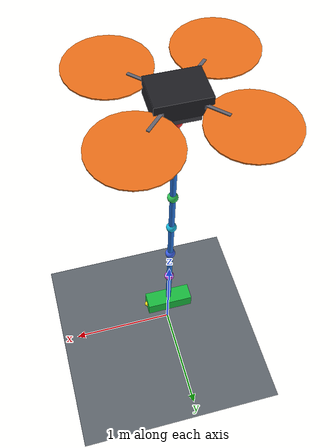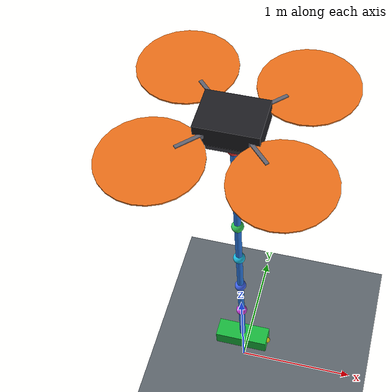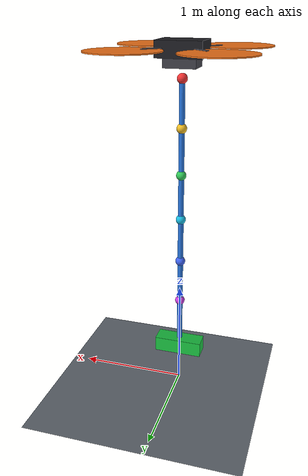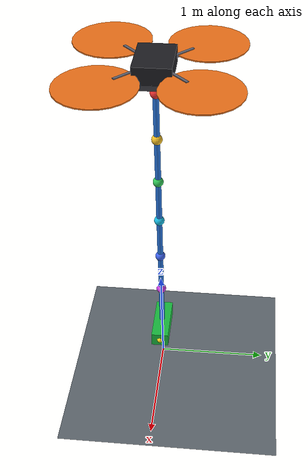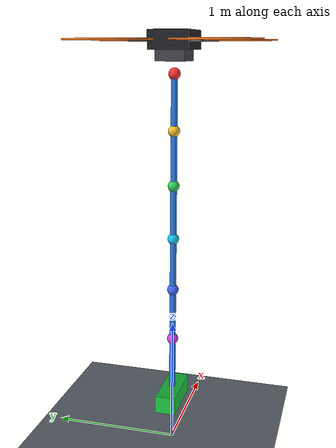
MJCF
<?xml version='1.0' encoding='utf-8'?>
<mujoco model="uav_planar_chain_6link">
  <!--Quadrotor geometry/actuator organization adapted in memory from Udaan; no upstream file is modified.-->
  <compiler angle="radian" coordinate="local" inertiafromgeom="false" />
  <option timestep="0.001" gravity="0 0 -9.81" integrator="RK4">
    <flag energy="enable" />
  </option>
  <visual>
    <global offwidth="1280" offheight="720" />
  </visual>
  <asset>
    <texture name="sky" type="skybox" builtin="gradient" rgb1="0.7 0.82 0.95" rgb2="0.35 0.45 0.55" width="512" height="512" />
    <texture name="checker" type="2d" builtin="checker" rgb1="0.42 0.45 0.48" rgb2="0.34 0.37 0.4" width="512" height="512" mark="cross" markrgb="0.65 0.65 0.65" />
    <material name="ground_mat" texture="checker" texrepeat="10 10" texuniform="true" reflectance="0.15" />
  </asset>
  <worldbody>
    <light name="key" pos="2 2 6" dir="-0.2 -0.2 -1" directional="true" diffuse="0.9 0.9 0.9" />
    <geom name="ground" type="plane" size="0 0 1" material="ground_mat" condim="1" />
    <camera name="main_camera" mode="targetbody" target="link_3" pos="4 -6 3.5" fovy="50" />
    <camera name="side_camera" mode="fixed" pos="0 -6 1.7" xyaxes="1 0 0 0 0 1" fovy="45" />
    <camera name="oblique_camera" mode="targetbody" target="link_3" pos="5 -3 4.2" fovy="50" />
    <body name="quadrotor" pos="0 0 3.2" quat="1 0 0 0">
      <joint name="quadrotor_free" type="free" />
      <inertial pos="0 0 0" mass="9.74" diaginertia="0.655826666667 0.966532666667 1.24834333333" />
      <geom name="m400_fuselage" type="box" pos="0 0 0" size="0.20 0.15 0.07" mass="0" contype="0" conaffinity="0" rgba="0.12 0.12 0.14 1" />
      <geom name="m400_lower_body" type="box" pos="0 0 -0.10" size="0.14 0.11 0.05" mass="0" contype="0" conaffinity="0" rgba="0.25 0.25 0.28 1" />
      <geom name="quadrotor_rotor_arm_geom_0" type="box" pos="0 0 0" quat="0.92388 0 0 0.382683" size="0.378302127935 0.012 0.012" mass="0" contype="0" conaffinity="0" rgba="0.4 0.4 0.45 1" />
      <geom name="quadrotor_rotor_prop_geom_0" type="cylinder" size="0.3175 0.005" pos="0.378302127935 0.378302127935 0" mass="0" contype="0" conaffinity="0" rgba="0.95 0.45 0.1 1" />
      <site name="site0" type="box" pos="0.378302127935 0.378302127935 0" size="0.01 0.01 0.01" rgba="0 0 0 0" />
      <geom name="quadrotor_rotor_arm_geom_1" type="box" pos="0 0 0" quat="0.382683 0 0 0.92388" size="0.378302127935 0.012 0.012" mass="0" contype="0" conaffinity="0" rgba="0.4 0.4 0.45 1" />
      <geom name="quadrotor_rotor_prop_geom_1" type="cylinder" size="0.3175 0.005" pos="-0.378302127935 0.378302127935 0" mass="0" contype="0" conaffinity="0" rgba="0.95 0.45 0.1 1" />
      <site name="site1" type="box" pos="-0.378302127935 0.378302127935 0" size="0.01 0.01 0.01" rgba="0 0 0 0" />
      <geom name="quadrotor_rotor_arm_geom_2" type="box" pos="0 0 0" quat="-0.382683 0 0 0.92388" size="0.378302127935 0.012 0.012" mass="0" contype="0" conaffinity="0" rgba="0.4 0.4 0.45 1" />
      <geom name="quadrotor_rotor_prop_geom_2" type="cylinder" size="0.3175 0.005" pos="-0.378302127935 -0.378302127935 0" mass="0" contype="0" conaffinity="0" rgba="0.95 0.45 0.1 1" />
      <site name="site2" type="box" pos="-0.378302127935 -0.378302127935 0" size="0.01 0.01 0.01" rgba="0 0 0 0" />
      <geom name="quadrotor_rotor_arm_geom_3" type="box" pos="0 0 0" quat="-0.92388 0 0 0.382683" size="0.378302127935 0.012 0.012" mass="0" contype="0" conaffinity="0" rgba="0.4 0.4 0.45 1" />
      <geom name="quadrotor_rotor_prop_geom_3" type="cylinder" size="0.3175 0.005" pos="0.378302127935 -0.378302127935 0" mass="0" contype="0" conaffinity="0" rgba="0.95 0.45 0.1 1" />
      <site name="site3" type="box" pos="0.378302127935 -0.378302127935 0" size="0.01 0.01 0.01" rgba="0 0 0 0" />
      <site name="quadrotor_thrust" type="box" pos="0 0 0" size="0.035 0.035 0.035" rgba="0 0 0 0" />
      <site name="quadrotor_Mx" type="box" pos="0 0 0" size="0.06 0.035 0.025" rgba="0 0 0 0" />
      <site name="quadrotor_My" type="box" pos="0 0 0" size="0.06 0.035 0.025" rgba="0 0 0 0" />
      <site name="quadrotor_Mz" type="box" pos="0 0 0" size="0.06 0.035 0.025" rgba="0 0 0 0" />
      <body name="link_1" pos="0 0 -0.24" quat="1 0 0 0">
        <joint name="joint_1" type="hinge" axis="0 1 0" limited="true" range="-1.74532925199 1.74532925199" damping="0.05" frictionloss="0.005" />
        <geom name="joint_marker_1" type="sphere" pos="0 0 0" size="0.045" mass="0" contype="0" conaffinity="0" group="2" rgba="0.95 0.2 0.2 1" />
        <inertial pos="0 0 -0.208333333333" mass="0.166666666667" diaginertia="0.00243730709877 0.00243730709877 5.20833333333e-05" />
        <geom name="link_1_geom" type="capsule" fromto="0 0 0 0 0 -0.416666666667" size="0.025" mass="0.166666666667" rgba="0.15 0.45 0.85 1" />
        <body name="link_2_mount" pos="0 0 -0.416666666667">
          <body name="link_2" pos="0 0 0" quat="1 0 0 0">
            <joint name="joint_2" type="hinge" axis="0 1 0" limited="true" range="-1.74532925199 1.74532925199" damping="0.05" frictionloss="0.005" />
            <geom name="joint_marker_2" type="sphere" pos="0 0 0" size="0.045" mass="0" contype="0" conaffinity="0" group="2" rgba="0.95 0.75 0.15 1" />
            <inertial pos="0 0 -0.208333333333" mass="0.166666666667" diaginertia="0.00243730709877 0.00243730709877 5.20833333333e-05" />
            <geom name="link_2_geom" type="capsule" fromto="0 0 0 0 0 -0.416666666667" size="0.025" mass="0.166666666667" rgba="0.15 0.45 0.85 1" />
            <body name="link_3_mount" pos="0 0 -0.416666666667">
              <body name="link_3" pos="0 0 0" quat="1 0 0 0">
                <joint name="joint_3" type="hinge" axis="0 1 0" limited="true" range="-1.74532925199 1.74532925199" damping="0.05" frictionloss="0.005" />
                <geom name="joint_marker_3" type="sphere" pos="0 0 0" size="0.045" mass="0" contype="0" conaffinity="0" group="2" rgba="0.2 0.8 0.35 1" />
                <inertial pos="0 0 -0.208333333333" mass="0.166666666667" diaginertia="0.00243730709877 0.00243730709877 5.20833333333e-05" />
                <geom name="link_3_geom" type="capsule" fromto="0 0 0 0 0 -0.416666666667" size="0.025" mass="0.166666666667" rgba="0.15 0.45 0.85 1" />
                <body name="link_4_mount" pos="0 0 -0.416666666667">
                  <body name="link_4" pos="0 0 0" quat="1 0 0 0">
                    <joint name="joint_4" type="hinge" axis="0 1 0" limited="true" range="-1.74532925199 1.74532925199" damping="0.05" frictionloss="0.005" />
                    <geom name="joint_marker_4" type="sphere" pos="0 0 0" size="0.045" mass="0" contype="0" conaffinity="0" group="2" rgba="0.1 0.75 0.9 1" />
                    <inertial pos="0 0 -0.208333333333" mass="0.166666666667" diaginertia="0.00243730709877 0.00243730709877 5.20833333333e-05" />
                    <geom name="link_4_geom" type="capsule" fromto="0 0 0 0 0 -0.416666666667" size="0.025" mass="0.166666666667" rgba="0.15 0.45 0.85 1" />
                    <body name="link_5_mount" pos="0 0 -0.416666666667">
                      <body name="link_5" pos="0 0 0" quat="1 0 0 0">
                        <joint name="joint_5" type="hinge" axis="0 1 0" limited="true" range="-1.74532925199 1.74532925199" damping="0.05" frictionloss="0.005" />
                        <geom name="joint_marker_5" type="sphere" pos="0 0 0" size="0.045" mass="0" contype="0" conaffinity="0" group="2" rgba="0.25 0.4 0.95 1" />
                        <inertial pos="0 0 -0.208333333333" mass="0.166666666667" diaginertia="0.00243730709877 0.00243730709877 5.20833333333e-05" />
                        <geom name="link_5_geom" type="capsule" fromto="0 0 0 0 0 -0.416666666667" size="0.025" mass="0.166666666667" rgba="0.15 0.45 0.85 1" />
                        <body name="link_6_mount" pos="0 0 -0.416666666667">
                          <body name="link_6" pos="0 0 0" quat="1 0 0 0">
                            <joint name="joint_6" type="hinge" axis="0 1 0" limited="true" range="-1.74532925199 1.74532925199" damping="0.05" frictionloss="0.005" />
                            <geom name="joint_marker_6" type="sphere" pos="0 0 0" size="0.045" mass="0" contype="0" conaffinity="0" group="2" rgba="0.8 0.25 0.9 1" />
                            <inertial pos="0 0 -0.208333333333" mass="0.166666666667" diaginertia="0.00243730709877 0.00243730709877 5.20833333333e-05" />
                            <geom name="link_6_geom" type="capsule" fromto="0 0 0 0 0 -0.416666666667" size="0.025" mass="0.166666666667" rgba="0.15 0.45 0.85 1" />
                            <body name="cutter" pos="0 0 -0.416666666667">
                              <geom name="cutter_geom" type="box" pos="0 0 -0.07" size="0.225 0.08 0.07" mass="2.5" rgba="0.1 0.75 0.25 1" />
                              <inertial pos="0 0 -0.07" mass="2.5" diaginertia="0.00941666666667 0.0462708333333 0.0475208333333" />
                              <site name="cutter_tip" type="sphere" pos="0.225 0 -0.07" size="0.025" rgba="0.95 0.85 0.1 1" />
                            </body>
                          </body>
                        </body>
                      </body>
                    </body>
                  </body>
                </body>
              </body>
            </body>
          </body>
        </body>
      </body>
    </body>
  </worldbody>
  <equality>
    <weld name="passive_anchor" body1="quadrotor" active="false" solref="0.02 1" />
  </equality>
  <actuator>
    <motor name="rotor_motor_0" site="site0" ctrlrange="0 10" gear="0 0 1 0 0 -0.0249945776" />
    <motor name="rotor_motor_1" site="site1" ctrlrange="0 10" gear="0 0 1 0 0 0.0249945776" />
    <motor name="rotor_motor_2" site="site2" ctrlrange="0 10" gear="0 0 1 0 0 -0.0249945776" />
    <motor name="rotor_motor_3" site="site3" ctrlrange="0 10" gear="0 0 1 0 0 0.0249945776" />
    <motor name="thrust_motor" site="quadrotor_thrust" ctrlrange="0 40" gear="0 0 1 0 0 0" />
    <motor name="mx_motor" site="quadrotor_Mx" ctrlrange="-3 3" gear="0 0 0 1 0 0" />
    <motor name="my_motor" site="quadrotor_My" ctrlrange="-3 3" gear="0 0 0 0 1 0" />
    <motor name="mz_motor" site="quadrotor_Mz" ctrlrange="-3 3" gear="0 0 0 0 0 1" />
  </actuator>
</mujoco>
